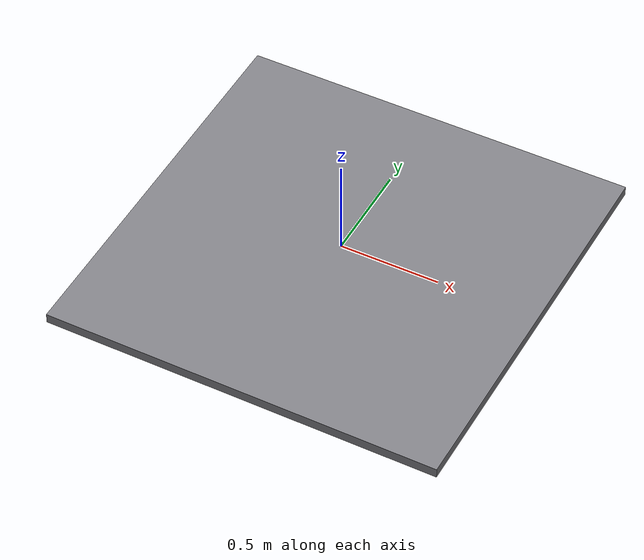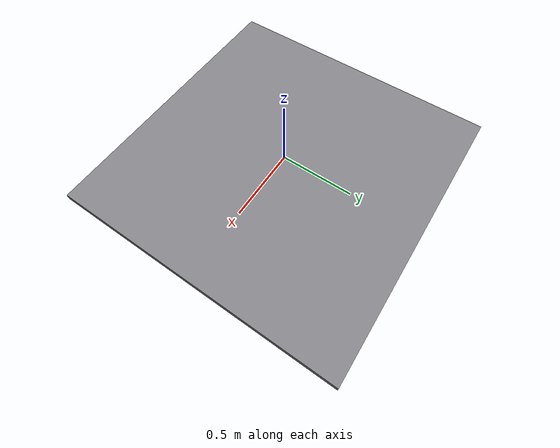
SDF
<?xml version="1.0"?>
<sdf version="1.9">
  <world name="plumbers_block">
    <gravity>0 0 0</gravity>
    <physics name="1ms" type="ignored">
      <max_step_size>0.001</max_step_size>
      <real_time_factor>1.0</real_time_factor>
    </physics>
    <plugin filename="gz-sim-physics-system" name="gz::sim::systems::Physics"></plugin>
    <plugin filename="gz-sim-user-commands-system" name="gz::sim::systems::UserCommands"></plugin>
    <plugin filename="gz-sim-scene-broadcaster-system" name="gz::sim::systems::SceneBroadcaster"></plugin>
    <plugin filename="gz-sim-sensors-system" name="gz::sim::systems::Sensors">
      <render_engine>ogre2</render_engine>
    </plugin>
    <plugin filename="gz-sim-contact-system" name="gz::sim::systems::Contact"></plugin>

    <light type="directional" name="sun">
      <cast_shadows>true</cast_shadows>
      <pose>0 0 10 0 0 0</pose>
      <diffuse>0.8 0.8 0.8 1</diffuse>
      <specular>0.2 0.2 0.2 1</specular>
      <direction>-0.5 0.1 -0.9</direction>
    </light>

    <model name="table">
      <static>true</static>
      <pose>0 0 -0.05 0 0 0</pose>
      <link name="link">
        <collision name="collision">
          <geometry>
            <box><size>2.0 2.0 0.05</size></box>
          </geometry>
        </collision>
        <visual name="visual">
          <geometry>
            <box><size>2.0 2.0 0.05</size></box>
          </geometry>
          <material>
            <ambient>0.5 0.5 0.52 1</ambient>
            <diffuse>0.5 0.5 0.52 1</diffuse>
          </material>
        </visual>
      </link>
    </model>
  </world>
</sdf>
